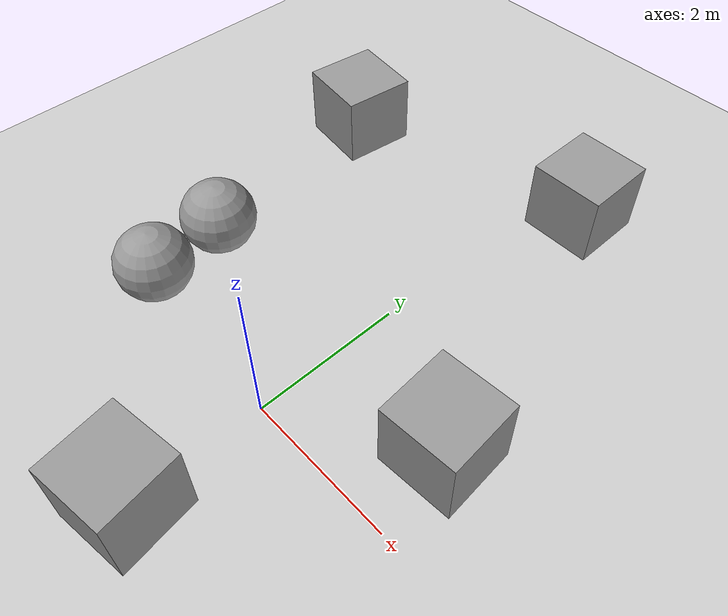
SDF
<sdf version="1.4">
 <world name="default">
  <light name="sun" type="directional">
   <pose>0 0 10 0 -0 0</pose>
   <diffuse>0.8 0.8 0.8 1</diffuse>
   <specular>0.2 0.2 0.2 1</specular>
   <attenuation>
    <range>1000</range>
    <constant>0.9</constant>
    <linear>0.01</linear>
    <quadratic>0.001</quadratic>
   </attenuation>
   <direction>-0.5 0.1 -0.9</direction>
  </light>
  <model name="ground_plane">
   <static>1</static>
   <link name="link">
    <collision name="collision">
     <geometry><plane><normal>0 0 1</normal><size>100 100</size></plane></geometry>
     <surface><friction><ode><mu>100</mu><mu2>50</mu2></ode></friction></surface>
    </collision>
    <visual name="visual">
     <cast_shadows>0</cast_shadows>
     <geometry><plane><normal>0 0 1</normal><size>100 100</size></plane></geometry>
     <material>
      <script><uri>file://media/materials/scripts/gazebo.material</uri><name>Gazebo/Grey</name></script>
     </material>
    </visual>
    <velocity_decay><linear>0</linear><angular>0</angular></velocity_decay>
   </link>
  </model>
  <physics type="ode">
   <max_step_size>0.001</max_step_size>
   <real_time_factor>1</real_time_factor>
   <real_time_update_rate>1000</real_time_update_rate>
   <gravity>0 0 -9.8</gravity>
  </physics>
  <scene><ambient>0.4 0.4 0.4 1</ambient><background>0.7 0.7 0.7 1</background><shadows>1</shadows></scene>
  <spherical_coordinates>
   <surface_model>EARTH_WGS84</surface_model>
   <latitude_deg>0</latitude_deg>
   <longitude_deg>0</longitude_deg>
   <elevation>0</elevation>
   <heading_deg>0</heading_deg>
  </spherical_coordinates>
  <model name="unit_box_1">
   <pose>0.00719 -1.7233 0.499997 1e-06 -1e-06 0.153046</pose>
   <link name="link">
    <inertial>
     <mass>1</mass>
     <inertia><ixx>1</ixx><ixy>0</ixy><ixz>0</ixz><iyy>1</iyy><iyz>0</iyz><izz>1</izz></inertia>
    </inertial>
    <collision name="collision"><geometry><box><size>4.74301 1 1</size></box></geometry></collision>
    <visual name="visual">
     <geometry><box><size>1 1 1</size></box></geometry>
     <material>
      <script><uri>file://media/materials/scripts/gazebo.material</uri><name>Gazebo/Grey</name></script>
     </material>
    </visual>
    <velocity_decay><linear>0</linear><angular>0</angular></velocity_decay>
   </link>
   <static>0</static>
  </model>
  <model name="unit_box_2">
   <pose>1.81856 1.07981 0.499999 0 3e-06 0.065899</pose>
   <link name="link">
    <inertial>
     <mass>1</mass>
     <inertia><ixx>1</ixx><ixy>0</ixy><ixz>0</ixz><iyy>1</iyy><iyz>0</iyz><izz>1</izz></inertia>
    </inertial>
    <collision name="collision"><geometry><box><size>1 3.56529 1</size></box></geometry></collision>
    <visual name="visual">
     <geometry><box><size>1 1 1</size></box></geometry>
     <material>
      <script><uri>file://media/materials/scripts/gazebo.material</uri><name>Gazebo/Grey</name></script>
     </material>
    </visual>
    <velocity_decay><linear>0</linear><angular>0</angular></velocity_decay>
   </link>
   <static>0</static>
  </model>
  <model name="unit_box_3">
   <pose>-2.88149 4.14436 0.499999 1.05879e-22 3e-06 -0.124696</pose>
   <link name="link">
    <inertial>
     <mass>1</mass>
     <inertia><ixx>1</ixx><ixy>0</ixy><ixz>0</ixz><iyy>1</iyy><iyz>0</iyz><izz>1</izz></inertia>
    </inertial>
    <collision name="collision"><geometry><box><size>1 4.1973 1</size></box></geometry></collision>
    <visual name="visual">
     <geometry><box><size>1 1 1</size></box></geometry>
     <material>
      <script><uri>file://media/materials/scripts/gazebo.material</uri><name>Gazebo/Grey</name></script>
     </material>
    </visual>
    <velocity_decay><linear>0</linear><angular>0</angular></velocity_decay>
   </link>
   <static>0</static>
  </model>
  <model name="unit_box_4">
   <pose>0.608943 4.99731 0.499912 5.29396e-23 -3.1e-05 -0.004056</pose>
   <link name="link">
    <inertial>
     <mass>1</mass>
     <inertia><ixx>1</ixx><ixy>0</ixy><ixz>0</ixz><iyy>1</iyy><iyz>0</iyz><izz>1</izz></inertia>
    </inertial>
    <collision name="collision"><geometry><box><size>5.6346 1 1</size></box></geometry></collision>
    <visual name="visual">
     <geometry><box><size>1 1 1</size></box></geometry>
     <material>
      <script><uri>file://media/materials/scripts/gazebo.material</uri><name>Gazebo/Grey</name></script>
     </material>
    </visual>
    <velocity_decay><linear>0</linear><angular>0</angular></velocity_decay>
   </link>
   <static>0</static>
  </model>
  <model name="unit_sphere_1">
   <pose>-2.4142 1.21672 0.5 0.000982 0.005084 2.1e-05</pose>
   <link name="link">
    <inertial>
     <mass>1</mass>
     <inertia><ixx>1</ixx><ixy>0</ixy><ixz>0</ixz><iyy>1</iyy><iyz>0</iyz><izz>1</izz></inertia>
    </inertial>
    <collision name="collision"><geometry><sphere><radius>0.5</radius></sphere></geometry></collision>
    <visual name="visual">
     <geometry><sphere><radius>0.5</radius></sphere></geometry>
     <material>
      <script><uri>file://media/materials/scripts/gazebo.material</uri><name>Gazebo/Grey</name></script>
     </material>
    </visual>
    <velocity_decay><linear>0</linear><angular>0</angular></velocity_decay>
   </link>
   <static>0</static>
  </model>
  <model name="unit_sphere_2">
   <pose>-2.29611 0.155588 0.5 0 -0 0</pose>
   <link name="link">
    <inertial>
     <mass>1</mass>
     <inertia><ixx>1</ixx><ixy>0</ixy><ixz>0</ixz><iyy>1</iyy><iyz>0</iyz><izz>1</izz></inertia>
    </inertial>
    <collision name="collision"><geometry><sphere><radius>0.5</radius></sphere></geometry></collision>
    <visual name="visual">
     <geometry><sphere><radius>0.5</radius></sphere></geometry>
     <material>
      <script><uri>file://media/materials/scripts/gazebo.material</uri><name>Gazebo/Grey</name></script>
     </material>
    </visual>
    <velocity_decay><linear>0</linear><angular>0</angular></velocity_decay>
   </link>
   <static>0</static>
  </model>
 </world>
</sdf>
